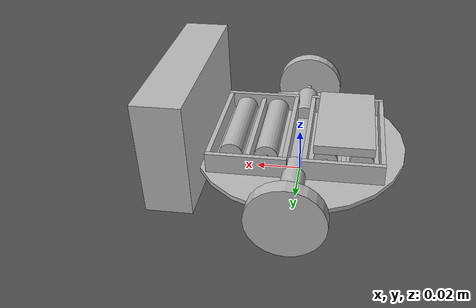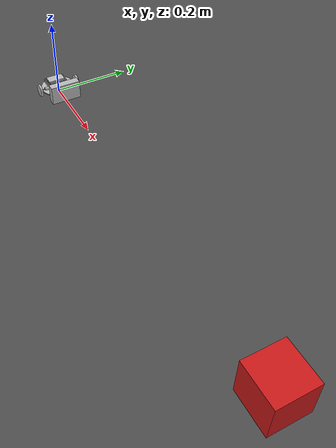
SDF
<?xml version="1.0"?>
<sdf version="1.10">
    <world name="pushing_objects_world">
        <physics name="default_physics" type="dart">
            <max_step_size>0.001</max_step_size>
            <real_time_factor>1</real_time_factor>
            <real_time_update_rate>1000</real_time_update_rate>
        </physics>

        <plugin
            filename="gz-sim-physics-system"
            name="gz::sim::systems::Physics">
        </plugin>
        <plugin
            filename="gz-sim-sensors-system"
            name="gz::sim::systems::Sensors">
        </plugin>
        <plugin
            filename="gz-sim-scene-broadcaster-system"
            name="gz::sim::systems::SceneBroadcaster">
        </plugin>
        <plugin
            filename="gz-sim-user-commands-system"
            name="gz::sim::systems::UserCommands">
        </plugin>

        <gui>
			<camera name="observation_camera">
                <view_controller>orbit</view_controller>
                <projection_type>perspective</projection_type>
				<track_visual>
					<name>3pi_front_cam_robot</name>
					<static>1</static>
					<xyz>-0.01 0 2</xyz>
                    <inherit_yaw>0</inherit_yaw>
				</track_visual>
			</camera>
		</gui>

		<light type="directional" name="sun">
            <cast_shadows>0</cast_shadows>
            <pose>0 0 10 0 0 0</pose>
            <diffuse>0.8 0.8 0.8 1</diffuse>
            <specular>0.2 0.2 0.2 1</specular>
            <attenuation>
                <range>1000</range>
                <constant>0.9</constant>
                <linear>0.01</linear>
                <quadratic>0.001</quadratic>
            </attenuation>
            <direction>1  0 -0.7</direction>
        </light>

        <include>
            <uri>model://po_models//empty_plane</uri>
            <pose> 0 0 -0.1 0 0 0</pose>
        </include>

        <include>
            <uri>model://po_models//red</uri>
            <pose>1 0 0 0 0 0</pose>
        </include>

        <include>
            <uri>model://po_models//green</uri>
            <pose>1 4 0.0 0 0 0</pose>
        </include>

        <include>
            <uri>model://po_models//blue</uri>
            <pose>1 8 0.0 0 0 0</pose>
        </include>

        <include>
            <uri>model://po_models//yellow</uri>
            <pose>1 -4 0.0 0 0 0</pose>
        </include>

        <include>
            <uri>model://po_models//pink</uri>
            <pose>1 -8 0.0 0 0 0</pose>
        </include>
        <include>
            <uri>model://po_models//cyan</uri>
            <pose>1 -12 0.0 0 0 0</pose>
        </include>
        <include>
            <uri>model://po_models//3pi_front_cam_robot</uri>
            <pose>0 0 0 0 0 0</pose>
        </include>
    </world>
</sdf>

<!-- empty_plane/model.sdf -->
<sdf version="1.9">
	<model name="empty_plane">
		<static>1</static>
		<pose>0 0 0 0 0 0</pose>
		<link name="link">
			<collision name="collision">
				<geometry>
					<box>
						<size>100 100 0.1</size>
					</box>
				</geometry>
                                <surface><friction><ode>
                                <mu>100000</mu>
                                <mu2>100000</mu2>
                                </ode></friction></surface>

			</collision>
			<visual name="visual">
				<geometry>
					<box>
						<size>100 100 0.1</size>
					</box>
				</geometry>
				<material>
					<ambient>0.3 0.3 0.3 1</ambient>
					<diffuse>0.3 0.3 0.3 1</diffuse>
					<specular>0.3 0.3 0.3 1</specular>
				</material>
			</visual>
		</link>
	</model>
</sdf>

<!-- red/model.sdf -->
<sdf version="1.9">
	<model name="red">
		<static>true</static>
		<pose>0 0 0 0 0 0</pose>
		<link name="link">
			<visual name="visual">
                <geometry>
                    <box>
                        <size> 0.1 0.1 0.1 </size>
                    </box>
                </geometry>
				<material>
					<ambient>0.8 0.1 0.1 1</ambient>
					<diffuse>0.8 0.1 0.1 1</diffuse>
				</material>
			</visual>
		</link>
	</model>
</sdf>

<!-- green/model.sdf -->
<sdf version="1.9">
	<model name="green">
		<static>true</static>
		<pose>0 0 0 0 0 0</pose>
		<link name="link">
			<visual name="visual">
                <geometry>
                    <box>
                        <size> 0.1 0.1 0.1 </size>
                    </box>
                </geometry>
				<material>
					<ambient>0.1 0.8 0.1 1</ambient>
					<diffuse>0.1 0.8 0.1 1</diffuse>
				</material>
			</visual>
		</link>
	</model>
</sdf>

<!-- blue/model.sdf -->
<sdf version="1.9">
	<model name="blue">
		<static>true</static>
		<pose>0 0 0 0 0 0</pose>
		<link name="link">
			<visual name="visual">
                <geometry>
                    <box>
                        <size> 0.1 0.1 0.1 </size>
                    </box>
                </geometry>
				<material>
					<ambient>0.1 0.1 0.8 1</ambient>
					<diffuse>0.1 0.1 0.8 1</diffuse>
				</material>
			</visual>
		</link>
	</model>
</sdf>

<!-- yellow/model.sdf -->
<sdf version="1.9">
	<model name="yellow">
		<static>true</static>
		<pose>0 0 0 0 0 0</pose>
		<link name="link">
			<visual name="visual">
                <geometry>
                    <box>
                        <size> 0.1 0.1 0.1 </size>
                    </box>
                </geometry>
				<material>
					<ambient>0.8 0.8 0.1 1</ambient>
					<diffuse>0.8 0.8 0.1 1</diffuse>
				</material>
			</visual>
		</link>
	</model>
</sdf>

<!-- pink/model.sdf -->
<sdf version="1.9">
	<model name="pink">
		<static>true</static>
		<pose>0 0 0 0 0 0</pose>
		<link name="link">
			<visual name="visual">
                <geometry>
                    <box>
                        <size> 0.1 0.1 0.1 </size>
                    </box>
                </geometry>
				<material>
					<ambient>0.8 0.1 0.8 1</ambient>
					<diffuse>0.8 0.1 0.8 1</diffuse>
				</material>
			</visual>
		</link>
	</model>
</sdf>

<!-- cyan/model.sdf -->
<sdf version="1.9">
	<model name="cyan">
		<static>true</static>
		<pose>0 0 0 0 0 0</pose>
		<link name="link">
			<visual name="visual">
                <geometry>
                    <box>
                        <size> 0.1 0.1 0.1 </size>
                    </box>
                </geometry>
				<material>
					<ambient>0.1 0.8 0.8 1</ambient>
					<diffuse>0.1 0.8 0.8 1</diffuse>
				</material>
			</visual>
		</link>
	</model>
</sdf>

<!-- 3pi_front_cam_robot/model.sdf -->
<sdf version="1.11">
	<model name="3pi_front_cam_robot">
		<static>0</static>
		<pose>0 0 0 0 0 0</pose>
		<!-- LINKS - LINKS - LINKS -->
		<link name="blade_link">
			<pose>0 0 0.013 0 0 0</pose>
			<inertial>
				<mass>0.005</mass>
				<pose>0 0 0.001 0 0 0</pose>
				<inertia>
					<ixx>2.92e-06</ixx>
					<ixy>0</ixy>
					<ixz>0</ixz>
					<iyy>2.92e-06</iyy>
					<iyz>0</iyz>
					<izz>5.52e-06</izz>
				</inertia>
			</inertial>
			<self_collide>0</self_collide>
			<enable_wind>0</enable_wind>
			<kinematic>0</kinematic>
			<gravity>1</gravity>
			<visual name="body_visual">
				<pose>0 0 0.001 0 0 0</pose>
				<geometry>
					<cylinder>
						<radius>0.047</radius>
						<length>0.002</length>
					</cylinder>
				</geometry>
				<transparency>0</transparency>
				<cast_shadows>1</cast_shadows>
			</visual>
		</link>
		<link name="battery_b_lr_link">
			<pose>-0.0275 0.02 0.02 1.570796 0 0</pose>
			<inertial>
				<mass>0.00756</mass>
				<pose>0 0 0.02 0 0 0</pose>
				<inertia>
					<ixx>1.06e-06</ixx>
					<ixy>0</ixy>
					<ixz>0</ixz>
					<iyy>1.06e-06</iyy>
					<iyz>0</iyz>
					<izz>9.5e-08</izz>
				</inertia>
			</inertial>
			<self_collide>0</self_collide>
			<enable_wind>0</enable_wind>
			<kinematic>0</kinematic>
			<gravity>1</gravity>
			<visual name="body_visual">
				<pose>0 0 0.02 0 0 0</pose>
				<geometry>
					<cylinder>
						<radius>0.005</radius>
						<length>0.04</length>
					</cylinder>
				</geometry>
				<transparency>0</transparency>
				<cast_shadows>1</cast_shadows>
			</visual>
			<visual name="head_visual">
				<pose>0 0 0.041 0 0 0</pose>
				<geometry>
					<cylinder>
						<radius>0.001</radius>
						<length>0.002</length>
					</cylinder>
				</geometry>
				<transparency>0</transparency>
				<cast_shadows>1</cast_shadows>
			</visual>
		</link>
		<link name="battery_b_rl_link">
			<pose>-0.0125 -0.02 0.02 -1.570796 0 0</pose>
			<inertial>
				<mass>0.00756</mass>
				<pose>0 0 0.02 0 0 0</pose>
				<inertia>
					<ixx>1.06e-06</ixx>
					<ixy>0</ixy>
					<ixz>0</ixz>
					<iyy>1.06e-06</iyy>
					<iyz>0</iyz>
					<izz>9.5e-08</izz>
				</inertia>
			</inertial>
			<self_collide>0</self_collide>
			<enable_wind>0</enable_wind>
			<kinematic>0</kinematic>
			<gravity>1</gravity>
			<visual name="body_visual">
				<pose>0 0 0.02 0 0 0</pose>
				<geometry>
					<cylinder>
						<radius>0.005</radius>
						<length>0.04</length>
					</cylinder>
				</geometry>
				<transparency>0</transparency>
				<cast_shadows>1</cast_shadows>
			</visual>
			<visual name="head_visual">
				<pose>0 0 0.041 0 0 0</pose>
				<geometry>
					<cylinder>
						<radius>0.001</radius>
						<length>0.002</length>
					</cylinder>
				</geometry>
				<transparency>0</transparency>
				<cast_shadows>1</cast_shadows>
			</visual>
		</link>
		<link name="box_b_link">
			<pose>-0.02 0 0.014 0 0 1.570796</pose>
			<inertial>
				<mass>0.00101</mass>
				<pose>0 0 0.005 0 0 0</pose>
				<inertia>
					<ixx>1.06e-07</ixx>
					<ixy>0</ixy>
					<ixz>0</ixz>
					<iyy>2.19e-07</iyy>
					<iyz>0</iyz>
					<izz>3.08e-07</izz>
				</inertia>
			</inertial>
			<self_collide>0</self_collide>
			<enable_wind>0</enable_wind>
			<kinematic>0</kinematic>
			<gravity>1</gravity>
			<visual name="front_visual">
				<pose>0 0.016 0.005 0 0 0</pose>
				<geometry>
					<box>
						<size>0.05 0.002 0.01</size>
					</box>
				</geometry>
				<transparency>0</transparency>
				<cast_shadows>1</cast_shadows>
			</visual>
			<visual name="back_visual">
				<pose>0 -0.016 0.005 0 0 0</pose>
				<geometry>
					<box>
						<size>0.05 0.002 0.01</size>
					</box>
				</geometry>
				<transparency>0</transparency>
				<cast_shadows>1</cast_shadows>
			</visual>
			<visual name="bottom_visual">
				<pose>0 0 0.001 0 0 0</pose>
				<geometry>
					<box>
						<size>0.05 0.03 0.002</size>
					</box>
				</geometry>
				<transparency>0</transparency>
				<cast_shadows>1</cast_shadows>
			</visual>
			<visual name="left_visual">
				<pose>-0.026 0 0.005 0 0 0</pose>
				<geometry>
					<box>
						<size>0.002 0.034 0.01</size>
					</box>
				</geometry>
				<transparency>0</transparency>
				<cast_shadows>1</cast_shadows>
			</visual>
			<visual name="middle_visual">
				<pose>0 0 0.005 0 0 0</pose>
				<geometry>
					<box>
						<size>0.05 0.002 0.006</size>
					</box>
				</geometry>
				<transparency>0</transparency>
				<cast_shadows>1</cast_shadows>
			</visual>
			<visual name="right_visual">
				<pose>0.026 0 0.005 0 0 0</pose>
				<geometry>
					<box>
						<size>0.002 0.034 0.01</size>
					</box>
				</geometry>
				<transparency>0</transparency>
				<cast_shadows>1</cast_shadows>
			</visual>
		</link>
		<link name="battery_f_lr_link">
			<pose>0.0275 0.02 0.02 1.570796 0 0</pose>
			<inertial>
				<mass>0.00756</mass>
				<pose>0 0 0.02 0 0 0</pose>
				<inertia>
					<ixx>1.06e-06</ixx>
					<ixy>0</ixy>
					<ixz>0</ixz>
					<iyy>1.06e-06</iyy>
					<iyz>0</iyz>
					<izz>9.5e-08</izz>
				</inertia>
			</inertial>
			<self_collide>0</self_collide>
			<enable_wind>0</enable_wind>
			<kinematic>0</kinematic>
			<gravity>1</gravity>
			<visual name="body_visual">
				<pose>0 0 0.02 0 0 0</pose>
				<geometry>
					<cylinder>
						<radius>0.005</radius>
						<length>0.04</length>
					</cylinder>
				</geometry>
				<transparency>0</transparency>
				<cast_shadows>1</cast_shadows>
			</visual>
			<visual name="head_visual">
				<pose>0 0 0.041 0 0 0</pose>
				<geometry>
					<cylinder>
						<radius>0.001</radius>
						<length>0.002</length>
					</cylinder>
				</geometry>
				<transparency>0</transparency>
				<cast_shadows>1</cast_shadows>
			</visual>
		</link>
		<link name="battery_f_rl_link">
			<pose>0.0125 -0.02 0.02 -1.570796 0 0</pose>
			<inertial>
				<mass>0.00756</mass>
				<pose>0 0 0.02 0 0 0</pose>
				<inertia>
					<ixx>1.06e-06</ixx>
					<ixy>0</ixy>
					<ixz>0</ixz>
					<iyy>1.06e-06</iyy>
					<iyz>0</iyz>
					<izz>9.5e-08</izz>
				</inertia>
			</inertial>
			<self_collide>0</self_collide>
			<enable_wind>0</enable_wind>
			<kinematic>0</kinematic>
			<gravity>1</gravity>
			<visual name="body_visual">
				<pose>0 0 0.02 0 0 0</pose>
				<geometry>
					<cylinder>
						<radius>0.005</radius>
						<length>0.04</length>
					</cylinder>
				</geometry>
				<transparency>0</transparency>
				<cast_shadows>1</cast_shadows>
			</visual>
			<visual name="head_visual">
				<pose>0 0 0.041 0 0 0</pose>
				<geometry>
					<cylinder>
						<radius>0.001</radius>
						<length>0.002</length>
					</cylinder>
				</geometry>
				<transparency>0</transparency>
				<cast_shadows>1</cast_shadows>
			</visual>
		</link>
		<link name="box_f_link">
			<pose>0.02 0 0.014 0 0 -1.570796</pose>
			<inertial>
				<mass>0.00101</mass>
				<pose>0 0 0.005 0 0 0</pose>
				<inertia>
					<ixx>1.06e-07</ixx>
					<ixy>0</ixy>
					<ixz>0</ixz>
					<iyy>2.19e-07</iyy>
					<iyz>0</iyz>
					<izz>3.08e-07</izz>
				</inertia>
			</inertial>
			<self_collide>0</self_collide>
			<enable_wind>0</enable_wind>
			<kinematic>0</kinematic>
			<gravity>1</gravity>
			<visual name="right_visual">
				<pose>0.026 0 0.005 0 0 0</pose>
				<geometry>
					<box>
						<size>0.002 0.034 0.01</size>
					</box>
				</geometry>
				<transparency>0</transparency>
				<cast_shadows>1</cast_shadows>
			</visual>
			<visual name="front_visual">
				<pose>0 0.016 0.005 0 0 0</pose>
				<geometry>
					<box>
						<size>0.05 0.002 0.01</size>
					</box>
				</geometry>
				<transparency>0</transparency>
				<cast_shadows>1</cast_shadows>
			</visual>
			<visual name="bottom_visual">
				<pose>0 0 0.001 0 0 0</pose>
				<geometry>
					<box>
						<size>0.05 0.03 0.002</size>
					</box>
				</geometry>
				<transparency>0</transparency>
				<cast_shadows>1</cast_shadows>
			</visual>
			<visual name="middle_visual">
				<pose>0 0 0.005 0 0 0</pose>
				<geometry>
					<box>
						<size>0.05 0.002 0.006</size>
					</box>
				</geometry>
				<transparency>0</transparency>
				<cast_shadows>1</cast_shadows>
			</visual>
			<visual name="left_visual">
				<pose>-0.026 0 0.005 0 0 0</pose>
				<geometry>
					<box>
						<size>0.002 0.034 0.01</size>
					</box>
				</geometry>
				<transparency>0</transparency>
				<cast_shadows>1</cast_shadows>
			</visual>
			<visual name="back_visual">
				<pose>0 -0.016 0.005 0 0 0</pose>
				<geometry>
					<box>
						<size>0.05 0.002 0.01</size>
					</box>
				</geometry>
				<transparency>0</transparency>
				<cast_shadows>1</cast_shadows>
			</visual>
		</link>
		<link name="caster_link">
			<pose>-0.04 0 0 0 0 0</pose>
			<inertial>
				<mass>0.00144</mass>
				<pose>0 0 0.0065 0 0 0</pose>
				<inertia>
					<ixx>2.4e-08</ixx>
					<ixy>0</ixy>
					<ixz>0</ixz>
					<iyy>2.4e-08</iyy>
					<iyz>0</iyz>
					<izz>2.4e-08</izz>
				</inertia>
			</inertial>
			<self_collide>0</self_collide>
			<enable_wind>0</enable_wind>
			<kinematic>0</kinematic>
			<gravity>1</gravity>
			<visual name="body_visual">
				<pose>0 0 0.0065 0 0 0</pose>
				<geometry>
					<sphere>
						<radius>0.0065</radius>
					</sphere>
				</geometry>
				<transparency>0</transparency>
				<cast_shadows>1</cast_shadows>
			</visual>
			<collision name="body_collision">
				<laser_retro>0</laser_retro>
				<max_contacts>10</max_contacts>
				<pose>0 0 0.0065 0 0 0</pose>
				<geometry>
					<sphere>
						<radius>0.0065</radius>
					</sphere>
				</geometry>
				<surface>
					<friction>
						<ode>
							<mu>1</mu>
							<mu2>0.5</mu2>
							<fdir1>0 0 0</fdir1>
							<slip1>0</slip1>
							<slip2>0</slip2>
						</ode>
						<torsional>
							<coefficient>0.75</coefficient>
							<use_patch_radius>0</use_patch_radius>
							<surface_radius>0.0065</surface_radius>
							<ode>
								<slip>0</slip>
							</ode>
						</torsional>
					</friction>
					<contact>
						<ode>
							<soft_cfm>0</soft_cfm>
							<soft_erp>0.2</soft_erp>
							<kp>1e+13</kp>
							<kd>1</kd>
							<max_vel>1</max_vel>
							<min_depth>0.001</min_depth>
						</ode>
					</contact>
				</surface>
			</collision>
		</link>
		<link name="wheel_l_link">
			<pose>0 -0.05 0.016 1.570796 0 0</pose>
			<inertial>
				<mass>0.00311</mass>
				<pose>0 0 0.003 0 0 0</pose>
				<inertia>
					<ixx>2.08e-07</ixx>
					<ixy>0</ixy>
					<ixz>0</ixz>
					<iyy>2.08e-07</iyy>
					<iyz>0</iyz>
					<izz>3.98e-07</izz>
				</inertia>
			</inertial>
			<self_collide>0</self_collide>
			<enable_wind>0</enable_wind>
			<kinematic>0</kinematic>
			<gravity>1</gravity>
			<visual name="body_visual">
				<pose>0 0 0.003 0 0 0</pose>
				<geometry>
					<cylinder>
						<radius>0.016</radius>
						<length>0.006</length>
					</cylinder>
				</geometry>
				<transparency>0</transparency>
				<cast_shadows>1</cast_shadows>
			</visual>
			<collision name="body_collision">
				<laser_retro>0</laser_retro>
				<max_contacts>10</max_contacts>
				<pose>0 0 0.003 0 0 0</pose>
				<geometry>
					<cylinder>
						<radius>0.016</radius>
						<length>0.006</length>
					</cylinder>
				</geometry>
				<surface>
					<friction>
						<ode>
							<mu>20000</mu>
							<mu2>10000</mu2>
							<slip1>0</slip1>
							<slip2>0</slip2>
						</ode>
						<torsional>
							<coefficient>15</coefficient>
							<use_patch_radius>0</use_patch_radius>
							<surface_radius>0.016</surface_radius>
							<ode>
								<slip>0</slip>
							</ode>
						</torsional>
					</friction>
					<contact>
						<ode>
							<soft_cfm>0</soft_cfm>
							<soft_erp>0.2</soft_erp>
							<kp>1e+13</kp>
							<kd>1</kd>
							<max_vel>1</max_vel>
							<min_depth>0.001</min_depth>
						</ode>
					</contact>
				</surface>
			</collision>
		</link>
		<link name="motor_l_link">
			<pose>0 -0.02 0.016 1.570796 0 0</pose>
			<inertial>
				<mass>0.03158</mass>
				<pose>0 0 0.01 0 0 0</pose>
				<inertia>
					<ixx>1.25e-06</ixx>
					<ixy>0</ixy>
					<ixz>0</ixz>
					<iyy>1.25e-06</iyy>
					<iyz>0</iyz>
					<izz>3.95e-07</izz>
				</inertia>
			</inertial>
			<self_collide>0</self_collide>
			<enable_wind>0</enable_wind>
			<kinematic>0</kinematic>
			<gravity>1</gravity>
			<visual name="body_visual">
				<pose>0 0 0.01 0 0 0</pose>
				<geometry>
					<cylinder>
						<radius>0.005</radius>
						<length>0.02</length>
					</cylinder>
				</geometry>
				<transparency>0</transparency>
				<cast_shadows>1</cast_shadows>
			</visual>
			<visual name="axis_visual">
				<pose>0 0 0.025 0 0 0</pose>
				<geometry>
					<cylinder>
						<radius>0.001</radius>
						<length>0.01</length>
					</cylinder>
				</geometry>
				<transparency>0</transparency>
				<cast_shadows>1</cast_shadows>
			</visual>
		</link>
		<link name="wheel_r_link">
			<pose>0 0.05 0.016 -1.570796 0 0</pose>
			<inertial>
				<mass>0.00311</mass>
				<pose>0 0 0.003 0 0 0</pose>
				<inertia>
					<ixx>2.08e-07</ixx>
					<ixy>0</ixy>
					<ixz>0</ixz>
					<iyy>2.08e-07</iyy>
					<iyz>0</iyz>
					<izz>3.98e-07</izz>
				</inertia>
			</inertial>
			<self_collide>0</self_collide>
			<enable_wind>0</enable_wind>
			<kinematic>0</kinematic>
			<gravity>1</gravity>
			<visual name="body_visual">
				<pose>0 0 0.003 0 0 0</pose>
				<geometry>
					<cylinder>
						<radius>0.016</radius>
						<length>0.006</length>
					</cylinder>
				</geometry>
				<transparency>0</transparency>
				<cast_shadows>1</cast_shadows>
			</visual>
			<collision name="body_collision">
				<laser_retro>0</laser_retro>
				<max_contacts>10</max_contacts>
				<pose>0 0 0.003 0 0 0</pose>
				<geometry>
					<cylinder>
						<radius>0.016</radius>
						<length>0.006</length>
					</cylinder>
				</geometry>
				<surface>
					<friction>
						<ode>
							<mu>20000</mu>
							<mu2>10000</mu2>
							<slip1>0</slip1>
							<slip2>0</slip2>
						</ode>
						<torsional>
							<coefficient>15</coefficient>
							<use_patch_radius>0</use_patch_radius>
							<surface_radius>0.016</surface_radius>
							<ode>
								<slip>0</slip>
							</ode>
						</torsional>
					</friction>
					<contact>
						<ode>
							<soft_cfm>0</soft_cfm>
							<soft_erp>0.2</soft_erp>
							<kp>1e+13</kp>
							<kd>1</kd>
							<max_vel>1</max_vel>
							<min_depth>0.001</min_depth>
						</ode>
					</contact>
				</surface>
			</collision>
		</link>
		<link name="motor_r_link">
			<pose>0 0.02 0.016 -1.570796 0 0</pose>
			<inertial>
				<mass>0.03158</mass>
				<pose>0 0 0.01 0 0 0</pose>
				<inertia>
					<ixx>1.25e-06</ixx>
					<ixy>0</ixy>
					<ixz>0</ixz>
					<iyy>1.25e-06</iyy>
					<iyz>0</iyz>
					<izz>3.95e-07</izz>
				</inertia>
			</inertial>
			<self_collide>0</self_collide>
			<enable_wind>0</enable_wind>
			<kinematic>0</kinematic>
			<gravity>1</gravity>
			<visual name="body_visual">
				<pose>0 0 0.01 0 0 0</pose>
				<geometry>
					<cylinder>
						<radius>0.005</radius>
						<length>0.02</length>
					</cylinder>
				</geometry>
				<transparency>0</transparency>
				<cast_shadows>1</cast_shadows>
			</visual>
			<visual name="axis_visual">
				<pose>0 0 0.025 0 0 0</pose>
				<geometry>
					<cylinder>
						<radius>0.001</radius>
						<length>0.01</length>
					</cylinder>
				</geometry>
				<transparency>0</transparency>
				<cast_shadows>1</cast_shadows>
			</visual>
		</link>
		<link name="display_link">
			<pose>-0.02 0 0.025 0 0 1.570796</pose>
			<inertial>
				<mass>0.01164</mass>
				<pose>0 0 0.002 0 0 0</pose>
				<inertia>
					<ixx>6.22e-07</ixx>
					<ixy>0</ixy>
					<ixz>0</ixz>
					<iyy>1.98e-06</iyy>
					<iyz>0</iyz>
					<izz>2.57e-06</izz>
				</inertia>
			</inertial>
			<self_collide>0</self_collide>
			<enable_wind>0</enable_wind>
			<kinematic>0</kinematic>
			<gravity>1</gravity>
			<visual name="body_visual">
				<pose>0 0 0.002 0 0 0</pose>
				<geometry>
					<box>
						<size>0.045 0.025 0.004</size>
					</box>
				</geometry>
				<transparency>0</transparency>
				<cast_shadows>1</cast_shadows>
			</visual>
		</link>
		<link name="front_camera_link">
			<pose>0.048 0 0.013 0 0 0</pose>
			<inertial>
				<mass>1e-12</mass>
			</inertial>
			<self_collide>0</self_collide>
			<sensor name="camera" type="camera">
				<camera>
					<horizontal_fov>1.047</horizontal_fov>
					<vertical_fov>1.047</vertical_fov>
					<image>
						<height>80</height>
						<width>80</width>
						<format>R8G8B8</format>
					</image>
					<clip>
						<near>0.001</near>
						<far>3</far>
					</clip>
				</camera>
				<always_on>1</always_on>
				<update_rate>30</update_rate>
				<visualize>1</visualize>
				<topic>/vehicle/camera</topic>
			</sensor>
		</link>
		<link name="collider_fix_link">
			<pose>0.05 0 0.028 0 0 0</pose>
			<inertial>
				<mass>1e-12</mass>
			</inertial>
			<self_collide>0</self_collide>
			<visual name="front_visual">
				<pose>0 0 0 0 0 0</pose>
				<geometry>
					<box>
						<size>0.02 0.08 0.05</size>
					</box>
				</geometry>
				<transparency>0</transparency>
				<cast_shadows>1</cast_shadows>
			</visual>
			<collision name="collision">
				<geometry>
					<box>
                        <size>0.02 0.08 0.05</size>
                    </box>
				</geometry>
			</collision>
		</link>

		<!-- JOINTS - JOINTS - JOINTS -->
		<joint name="battery_b_lr_joint" type="fixed">
			<parent>box_b_link</parent>
			<child>battery_b_lr_link</child>
			<pose>0 0 0 0 0 0</pose>
			<physics>
				<ode>
					<limit>
						<cfm>0</cfm>
						<erp>0.2</erp>
					</limit>
					<suspension>
						<cfm>0</cfm>
						<erp>0.2</erp>
					</suspension>
				</ode>
			</physics>
		</joint>
		<joint name="battery_b_rl_joint" type="fixed">
			<parent>box_b_link</parent>
			<child>battery_b_rl_link</child>
			<pose>0 0 0 0 0 0</pose>
			<physics>
				<ode>
					<limit>
						<cfm>0</cfm>
						<erp>0.2</erp>
					</limit>
					<suspension>
						<cfm>0</cfm>
						<erp>0.2</erp>
					</suspension>
				</ode>
			</physics>
		</joint>
		<joint name="battery_f_lr_joint" type="fixed">
			<parent>box_f_link</parent>
			<child>battery_f_lr_link</child>
			<pose>0 0 0 0 0 0</pose>
			<physics>
				<ode>
					<limit>
						<cfm>0</cfm>
						<erp>0.2</erp>
					</limit>
					<suspension>
						<cfm>0</cfm>
						<erp>0.2</erp>
					</suspension>
				</ode>
			</physics>
		</joint>
		<joint name="box_b_joint" type="fixed">
			<parent>blade_link</parent>
			<child>box_b_link</child>
			<pose>0 0 0 0 0 0</pose>
			<physics>
				<ode>
					<limit>
						<cfm>0</cfm>
						<erp>0.2</erp>
					</limit>
					<suspension>
						<cfm>0</cfm>
						<erp>0.2</erp>
					</suspension>
				</ode>
			</physics>
		</joint>
		<joint name="battery_f_rl_joint" type="fixed">
			<parent>box_f_link</parent>
			<child>battery_f_rl_link</child>
			<pose>0 0 0 0 0 0</pose>
			<physics>
				<ode>
					<limit>
						<cfm>0</cfm>
						<erp>0.2</erp>
					</limit>
					<suspension>
						<cfm>0</cfm>
						<erp>0.2</erp>
					</suspension>
				</ode>
			</physics>
		</joint>
		<joint name="box_f_joint" type="fixed">
			<parent>blade_link</parent>
			<child>box_f_link</child>
			<pose>0 0 0 0 0 0</pose>
			<physics>
				<ode>
					<limit>
						<cfm>0</cfm>
						<erp>0.2</erp>
					</limit>
					<suspension>
						<cfm>0</cfm>
						<erp>0.2</erp>
					</suspension>
				</ode>
			</physics>
		</joint>
		<joint name="caster_joint" type="ball">
			<parent>blade_link</parent>
			<child>caster_link</child>
			<pose>0 0 0.0065 0 0 0</pose>
			<physics>
				<ode>
					<limit>
						<cfm>0</cfm>
						<erp>0.2</erp>
					</limit>
					<suspension>
						<cfm>0</cfm>
						<erp>0.2</erp>
					</suspension>
				</ode>
			</physics>
		</joint>
		<joint name="left_axis_joint" type="revolute">
			<parent>blade_link</parent>
			<child>wheel_l_link</child>
			<pose>0 0 0 0 0 0</pose>
			<axis>
				<xyz>0 0 -1</xyz>
			</axis>
			<physics>
				<ode>
					<cfm>0</cfm>
					<erp>0.2</erp>
					<limit>
						<cfm>0</cfm>
						<erp>0.2</erp>
					</limit>
					<suspension>
						<cfm>0</cfm>
						<erp>0.2</erp>
					</suspension>
				</ode>
			</physics>
		</joint>
		<joint name="motor_l_joint" type="fixed">
			<parent>blade_link</parent>
			<child>motor_l_link</child>
			<pose>0 0 0 0 0 0</pose>
		</joint>
		<joint name="right_axis_joint" type="revolute">
			<parent>blade_link</parent>
			<child>wheel_r_link</child>
			<pose>0 0 0 0 0 0</pose>
			<axis>
				<xyz>0 0 1</xyz>
			</axis>
			<physics>
				<ode>
					<cfm>0</cfm>
					<erp>0.2</erp>
					<limit>
						<cfm>0</cfm>
						<erp>0.2</erp>
					</limit>
					<suspension>
						<cfm>0</cfm>
						<erp>0.2</erp>
					</suspension>
				</ode>
			</physics>
		</joint>
		<joint name="motor_r_joint" type="fixed">
			<parent>blade_link</parent>
			<child>motor_r_link</child>
			<pose>0 0 0 0 0 0</pose>
		</joint>
		<joint name="display_joint" type="fixed">
			<parent>box_b_link</parent>
			<child>display_link</child>
			<pose>0 0 0 0 0 0</pose>
		</joint>
		<joint name="front_camera_joint" type="fixed">
			<parent>blade_link</parent>
			<child>front_camera_link</child>
			<pose>0 0 0 0 0 0</pose>
		</joint>
		<joint name="collider_fix_joint" type="fixed">
			<parent>blade_link</parent>
			<child>collider_fix_link</child>
			<pose>0 0 0 0 0 0</pose>
		</joint>

		<!-- PLUGINS - PLUGINS - PLUGINS -->
		<plugin filename="ignition-gazebo-diff-drive-system" name="ignition::gazebo::systems::DiffDrive">
			<left_joint>left_axis_joint</left_joint>
			<right_joint>right_axis_joint</right_joint>
			<wheel_separation>0.1</wheel_separation>
			<wheel_radius>0.032</wheel_radius>
			<min_velocity>-2.0</min_velocity>
			<max_velocity>+2.0</max_velocity>
			<min_acceleration>-5000</min_acceleration>
			<max_acceleration>+5000</max_acceleration>
			<min_jerk>-1500000.0</min_jerk>
			<max_jerk>+1500000.0</max_jerk>
			<topic>/vehicle/motor</topic>
			<odom_topic>/vehicle/odo</odom_topic>
			<odom_publish_frequency>20</odom_publish_frequency>
		</plugin>
	</model>
</sdf>
